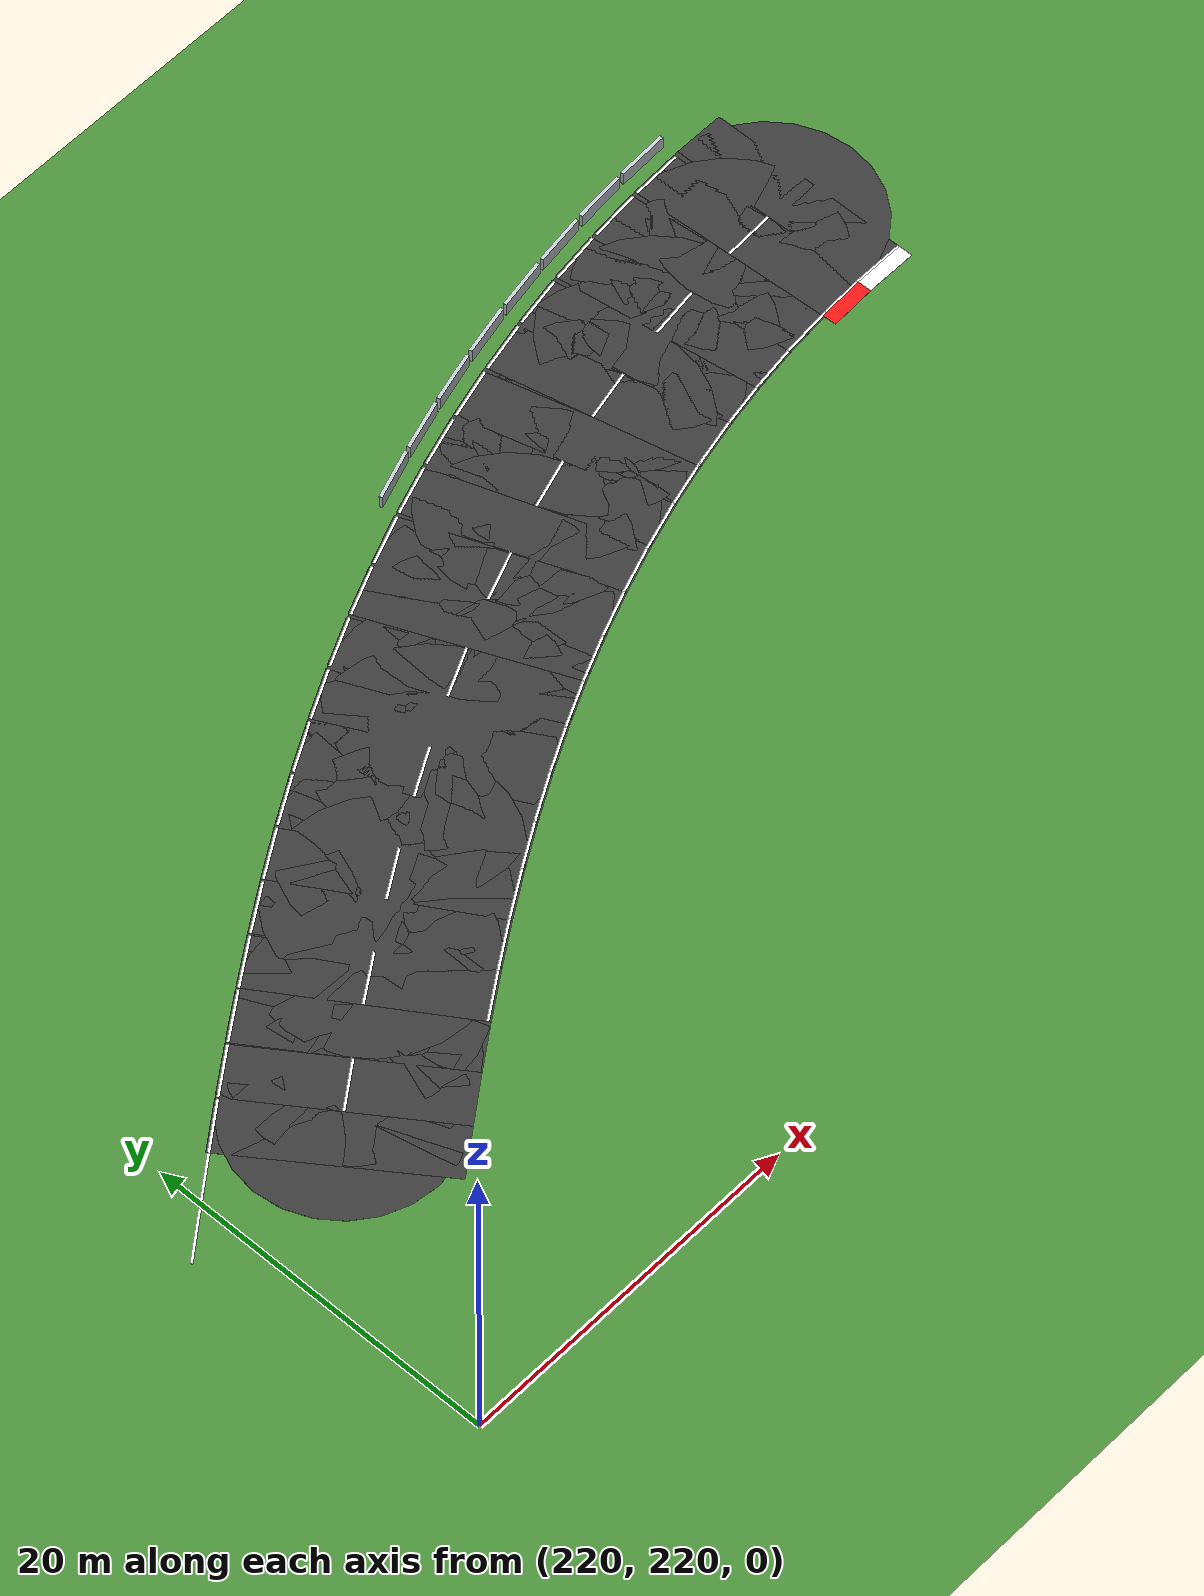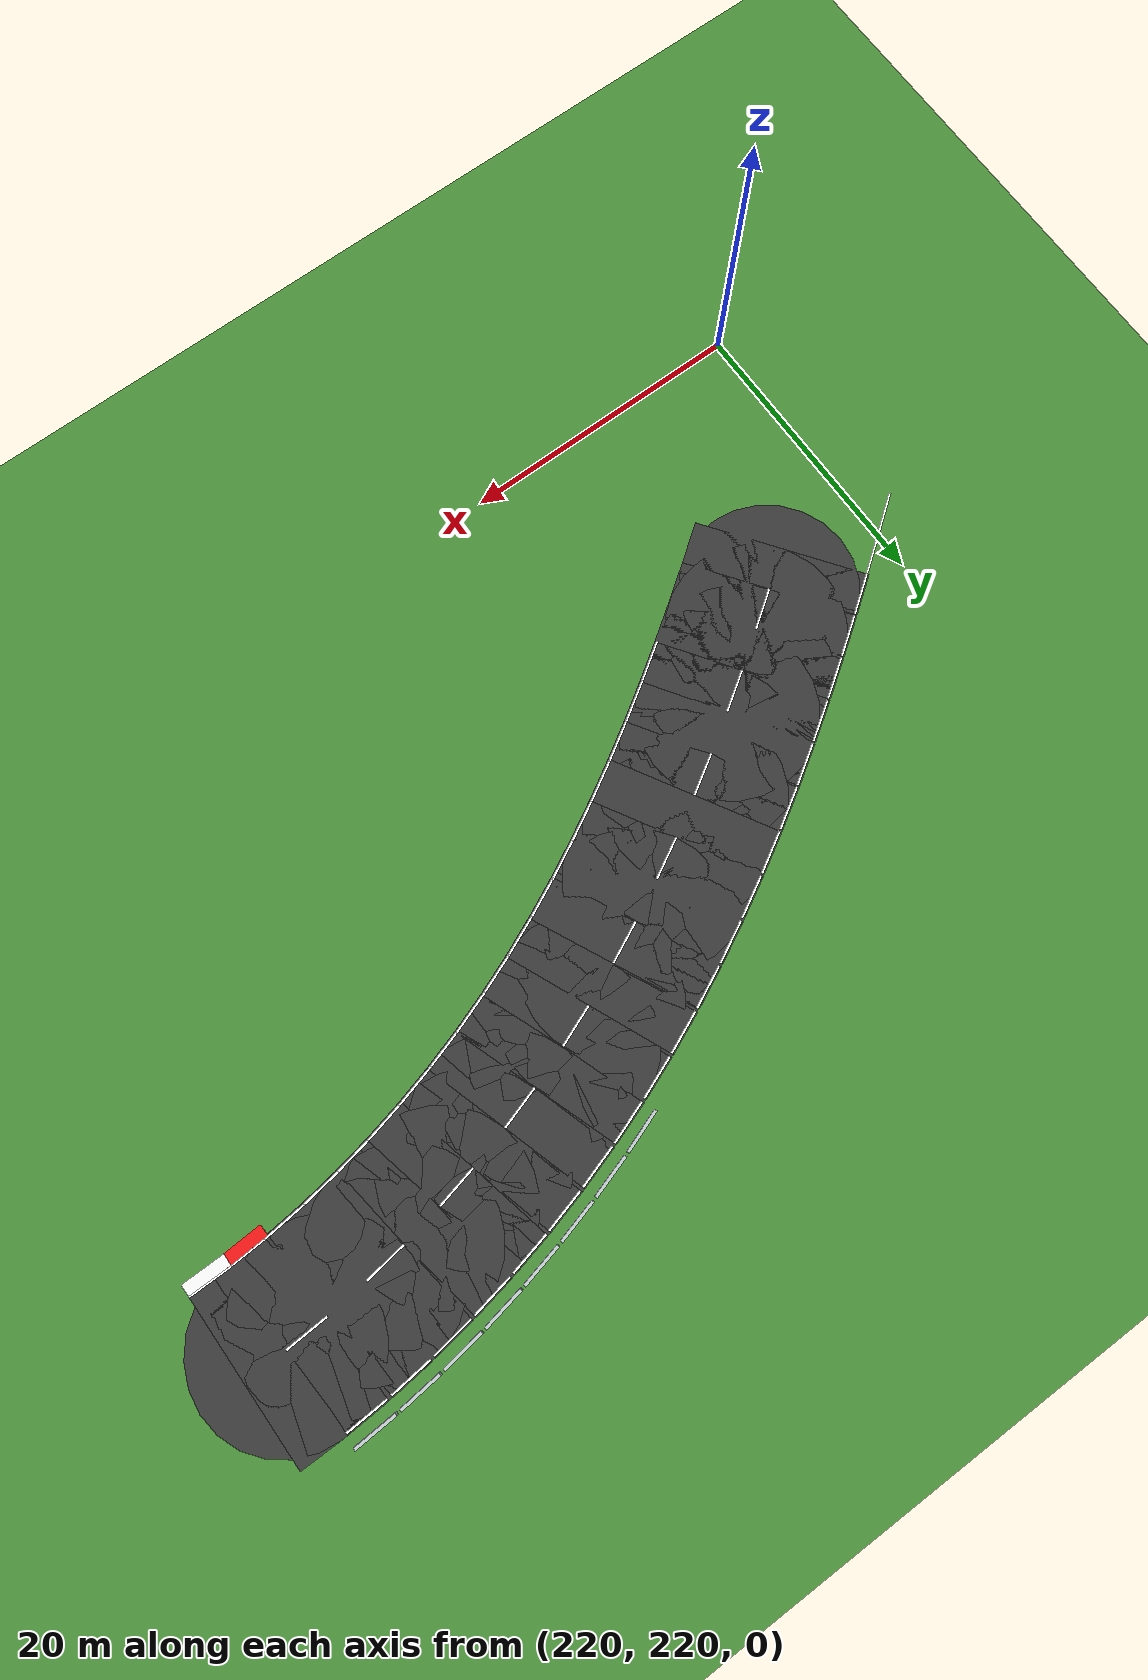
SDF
<sdf version="1.6">
 <world name="sem_silesia_ring_2026">
  <model name="ground_plane">
   <static>true</static>
   <link name="link">
    <collision name="collision">
     <geometry><plane><normal>0 0 1</normal><size>1200 1200</size></plane></geometry>
     <surface><friction><ode><mu>0.6</mu><mu2>0.6</mu2></ode></friction></surface>
    </collision>
    <visual name="visual">
     <geometry><plane><normal>0 0 1</normal><size>1200 1200</size></plane></geometry>
     <material><ambient>0.28 0.55 0.22 1</ambient><diffuse>0.28 0.55 0.22 1</diffuse></material>
    </visual>
   </link>
  </model>
  <model name="road_s213">
   <static>true</static>
   <pose>281.7502 257.1115 0.0030 0 0 3.1406</pose>
   <link name="link">
    <visual name="v">
     <geometry><box><size>3.0022 12.0000 0.0060</size></box></geometry>
     <material><ambient>0.22 0.22 0.22 1</ambient><diffuse>0.22 0.22 0.22 1</diffuse></material>
    </visual>
    <collision name="c">
     <geometry><box><size>3.0022 12.0000 0.0060</size></box></geometry>
     <surface><friction><ode><mu>0.9</mu><mu2>0.9</mu2></ode></friction></surface>
    </collision>
   </link>
  </model>
  <model name="wl_L_s213">
   <static>true</static>
   <pose>281.7446 251.2615 0.0070 0 0 3.1406</pose>
   <link name="link">
    <visual name="v">
     <geometry><box><size>3.0022 0.1500 0.0080</size></box></geometry>
     <material><ambient>0.95 0.95 0.95 1</ambient><diffuse>0.95 0.95 0.95 1</diffuse></material>
    </visual>
   </link>
  </model>
  <model name="kerb_L_213">
   <static>true</static>
   <pose>281.7442 250.8115 0.0120 0 0 3.1406</pose>
   <link name="link">
    <visual name="v">
     <geometry><box><size>3.0022 0.8000 0.0160</size></box></geometry>
     <material><ambient>0.95 0.95 0.95 1</ambient><diffuse>0.95 0.95 0.95 1</diffuse></material>
    </visual>
   </link>
  </model>
  <model name="road_s214">
   <static>true</static>
   <pose>278.7496 257.0422 0.0030 0 0 -3.0945</pose>
   <link name="link">
    <visual name="v">
     <geometry><box><size>3.0023 12.0000 0.0060</size></box></geometry>
     <material><ambient>0.22 0.22 0.22 1</ambient><diffuse>0.22 0.22 0.22 1</diffuse></material>
    </visual>
    <collision name="c">
     <geometry><box><size>3.0023 12.0000 0.0060</size></box></geometry>
     <surface><friction><ode><mu>0.9</mu><mu2>0.9</mu2></ode></friction></surface>
    </collision>
   </link>
  </model>
  <model name="road_jnt214">
   <static>true</static>
   <pose>280.2491 257.1129 0.0030 0 0 0</pose>
   <link name="link">
    <visual name="v">
     <geometry><cylinder><radius>6.0000</radius><length>0.0060</length></cylinder></geometry>
     <material><ambient>0.22 0.22 0.22 1</ambient><diffuse>0.22 0.22 0.22 1</diffuse></material>
    </visual>
    <collision name="c">
     <geometry><cylinder><radius>6.0000</radius><length>0.0060</length></cylinder></geometry>
     <surface><friction><ode><mu>0.9</mu><mu2>0.9</mu2></ode></friction></surface>
    </collision>
   </link>
  </model>
  <model name="wl_L_s214">
   <static>true</static>
   <pose>279.0252 251.1987 0.0070 0 0 -3.0945</pose>
   <link name="link">
    <visual name="v">
     <geometry><box><size>3.0023 0.1500 0.0080</size></box></geometry>
     <material><ambient>0.95 0.95 0.95 1</ambient><diffuse>0.95 0.95 0.95 1</diffuse></material>
    </visual>
   </link>
  </model>
  <model name="wl_R_s214">
   <static>true</static>
   <pose>278.4740 262.8857 0.0070 0 0 -3.0945</pose>
   <link name="link">
    <visual name="v">
     <geometry><box><size>3.0023 0.1500 0.0080</size></box></geometry>
     <material><ambient>0.95 0.95 0.95 1</ambient><diffuse>0.95 0.95 0.95 1</diffuse></material>
    </visual>
   </link>
  </model>
  <model name="cd_s214">
   <static>true</static>
   <pose>278.7496 257.0422 0.0070 0 0 -3.0945</pose>
   <link name="link">
    <visual name="v">
     <geometry><box><size>3.0023 0.1500 0.0080</size></box></geometry>
     <material><ambient>0.95 0.95 0.95 1</ambient><diffuse>0.95 0.95 0.95 1</diffuse></material>
    </visual>
   </link>
  </model>
  <model name="kerb_L_214">
   <static>true</static>
   <pose>279.0464 250.7492 0.0120 0 0 -3.0945</pose>
   <link name="link">
    <visual name="v">
     <geometry><box><size>3.0023 0.8000 0.0160</size></box></geometry>
     <material><ambient>0.92 0.08 0.08 1</ambient><diffuse>0.92 0.08 0.08 1</diffuse></material>
    </visual>
   </link>
  </model>
  <model name="arm_outR_214">
   <static>true</static>
   <pose>278.4292 263.8346 0.4000 0 0 -3.0945</pose>
   <link name="link">
    <visual name="v">
     <geometry><box><size>3.0023 0.2000 0.8000</size></box></geometry>
     <material><ambient>0.75 0.77 0.80 1</ambient><diffuse>0.75 0.77 0.80 1</diffuse></material>
    </visual>
    <collision name="c">
     <geometry><box><size>3.0023 0.2000 0.8000</size></box></geometry>
     <surface><friction><ode><mu>0.8</mu><mu2>0.8</mu2></ode></friction></surface>
    </collision>
   </link>
  </model>
  <model name="road_s215">
   <static>true</static>
   <pose>275.7556 256.8313 0.0030 0 0 -3.0481</pose>
   <link name="link">
    <visual name="v">
     <geometry><box><size>3.0023 12.0000 0.0060</size></box></geometry>
     <material><ambient>0.22 0.22 0.22 1</ambient><diffuse>0.22 0.22 0.22 1</diffuse></material>
    </visual>
    <collision name="c">
     <geometry><box><size>3.0023 12.0000 0.0060</size></box></geometry>
     <surface><friction><ode><mu>0.9</mu><mu2>0.9</mu2></ode></friction></surface>
    </collision>
   </link>
  </model>
  <model name="road_jnt215">
   <static>true</static>
   <pose>277.2501 256.9714 0.0030 0 0 0</pose>
   <link name="link">
    <visual name="v">
     <geometry><cylinder><radius>6.0000</radius><length>0.0060</length></cylinder></geometry>
     <material><ambient>0.22 0.22 0.22 1</ambient><diffuse>0.22 0.22 0.22 1</diffuse></material>
    </visual>
    <collision name="c">
     <geometry><cylinder><radius>6.0000</radius><length>0.0060</length></cylinder></geometry>
     <surface><friction><ode><mu>0.9</mu><mu2>0.9</mu2></ode></friction></surface>
    </collision>
   </link>
  </model>
  <model name="wl_L_s215">
   <static>true</static>
   <pose>276.3017 251.0069 0.0070 0 0 -3.0481</pose>
   <link name="link">
    <visual name="v">
     <geometry><box><size>3.0023 0.1500 0.0080</size></box></geometry>
     <material><ambient>0.95 0.95 0.95 1</ambient><diffuse>0.95 0.95 0.95 1</diffuse></material>
    </visual>
   </link>
  </model>
  <model name="wl_R_s215">
   <static>true</static>
   <pose>275.2094 262.6557 0.0070 0 0 -3.0481</pose>
   <link name="link">
    <visual name="v">
     <geometry><box><size>3.0023 0.1500 0.0080</size></box></geometry>
     <material><ambient>0.95 0.95 0.95 1</ambient><diffuse>0.95 0.95 0.95 1</diffuse></material>
    </visual>
   </link>
  </model>
  <model name="arm_outR_215">
   <static>true</static>
   <pose>275.1207 263.6016 0.4000 0 0 -3.0481</pose>
   <link name="link">
    <visual name="v">
     <geometry><box><size>3.0023 0.2000 0.8000</size></box></geometry>
     <material><ambient>0.75 0.77 0.80 1</ambient><diffuse>0.75 0.77 0.80 1</diffuse></material>
    </visual>
    <collision name="c">
     <geometry><box><size>3.0023 0.2000 0.8000</size></box></geometry>
     <surface><friction><ode><mu>0.8</mu><mu2>0.8</mu2></ode></friction></surface>
    </collision>
   </link>
  </model>
  <model name="road_s216">
   <static>true</static>
   <pose>272.7741 256.4844 0.0030 0 0 -3.0034</pose>
   <link name="link">
    <visual name="v">
     <geometry><box><size>3.0023 12.0000 0.0060</size></box></geometry>
     <material><ambient>0.22 0.22 0.22 1</ambient><diffuse>0.22 0.22 0.22 1</diffuse></material>
    </visual>
    <collision name="c">
     <geometry><box><size>3.0023 12.0000 0.0060</size></box></geometry>
     <surface><friction><ode><mu>0.9</mu><mu2>0.9</mu2></ode></friction></surface>
    </collision>
   </link>
  </model>
  <model name="road_jnt216">
   <static>true</static>
   <pose>274.2610 256.6912 0.0030 0 0 0</pose>
   <link name="link">
    <visual name="v">
     <geometry><cylinder><radius>6.0000</radius><length>0.0060</length></cylinder></geometry>
     <material><ambient>0.22 0.22 0.22 1</ambient><diffuse>0.22 0.22 0.22 1</diffuse></material>
    </visual>
    <collision name="c">
     <geometry><cylinder><radius>6.0000</radius><length>0.0060</length></cylinder></geometry>
     <surface><friction><ode><mu>0.9</mu><mu2>0.9</mu2></ode></friction></surface>
    </collision>
   </link>
  </model>
  <model name="wl_L_s216">
   <static>true</static>
   <pose>273.5799 250.6901 0.0070 0 0 -3.0034</pose>
   <link name="link">
    <visual name="v">
     <geometry><box><size>3.0023 0.1500 0.0080</size></box></geometry>
     <material><ambient>0.95 0.95 0.95 1</ambient><diffuse>0.95 0.95 0.95 1</diffuse></material>
    </visual>
   </link>
  </model>
  <model name="wl_R_s216">
   <static>true</static>
   <pose>271.9684 262.2786 0.0070 0 0 -3.0034</pose>
   <link name="link">
    <visual name="v">
     <geometry><box><size>3.0023 0.1500 0.0080</size></box></geometry>
     <material><ambient>0.95 0.95 0.95 1</ambient><diffuse>0.95 0.95 0.95 1</diffuse></material>
    </visual>
   </link>
  </model>
  <model name="cd_s216">
   <static>true</static>
   <pose>272.7741 256.4844 0.0070 0 0 -3.0034</pose>
   <link name="link">
    <visual name="v">
     <geometry><box><size>3.0023 0.1500 0.0080</size></box></geometry>
     <material><ambient>0.95 0.95 0.95 1</ambient><diffuse>0.95 0.95 0.95 1</diffuse></material>
    </visual>
   </link>
  </model>
  <model name="arm_outR_216">
   <static>true</static>
   <pose>271.8375 263.2196 0.4000 0 0 -3.0034</pose>
   <link name="link">
    <visual name="v">
     <geometry><box><size>3.0023 0.2000 0.8000</size></box></geometry>
     <material><ambient>0.75 0.77 0.80 1</ambient><diffuse>0.75 0.77 0.80 1</diffuse></material>
    </visual>
    <collision name="c">
     <geometry><box><size>3.0023 0.2000 0.8000</size></box></geometry>
     <surface><friction><ode><mu>0.8</mu><mu2>0.8</mu2></ode></friction></surface>
    </collision>
   </link>
  </model>
  <model name="road_s217">
   <static>true</static>
   <pose>269.8107 256.0071 0.0030 0 0 -2.9604</pose>
   <link name="link">
    <visual name="v">
     <geometry><box><size>3.0023 12.0000 0.0060</size></box></geometry>
     <material><ambient>0.22 0.22 0.22 1</ambient><diffuse>0.22 0.22 0.22 1</diffuse></material>
    </visual>
    <collision name="c">
     <geometry><box><size>3.0023 12.0000 0.0060</size></box></geometry>
     <surface><friction><ode><mu>0.9</mu><mu2>0.9</mu2></ode></friction></surface>
    </collision>
   </link>
  </model>
  <model name="road_jnt217">
   <static>true</static>
   <pose>271.2873 256.2776 0.0030 0 0 0</pose>
   <link name="link">
    <visual name="v">
     <geometry><cylinder><radius>6.0000</radius><length>0.0060</length></cylinder></geometry>
     <material><ambient>0.22 0.22 0.22 1</ambient><diffuse>0.22 0.22 0.22 1</diffuse></material>
    </visual>
    <collision name="c">
     <geometry><cylinder><radius>6.0000</radius><length>0.0060</length></cylinder></geometry>
     <surface><friction><ode><mu>0.9</mu><mu2>0.9</mu2></ode></friction></surface>
    </collision>
   </link>
  </model>
  <model name="wl_L_s217">
   <static>true</static>
   <pose>270.8651 250.2529 0.0070 0 0 -2.9604</pose>
   <link name="link">
    <visual name="v">
     <geometry><box><size>3.0023 0.1500 0.0080</size></box></geometry>
     <material><ambient>0.95 0.95 0.95 1</ambient><diffuse>0.95 0.95 0.95 1</diffuse></material>
    </visual>
   </link>
  </model>
  <model name="wl_R_s217">
   <static>true</static>
   <pose>268.7563 261.7613 0.0070 0 0 -2.9604</pose>
   <link name="link">
    <visual name="v">
     <geometry><box><size>3.0023 0.1500 0.0080</size></box></geometry>
     <material><ambient>0.95 0.95 0.95 1</ambient><diffuse>0.95 0.95 0.95 1</diffuse></material>
    </visual>
   </link>
  </model>
  <model name="arm_outR_217">
   <static>true</static>
   <pose>268.5851 262.6957 0.4000 0 0 -2.9604</pose>
   <link name="link">
    <visual name="v">
     <geometry><box><size>3.0023 0.2000 0.8000</size></box></geometry>
     <material><ambient>0.75 0.77 0.80 1</ambient><diffuse>0.75 0.77 0.80 1</diffuse></material>
    </visual>
    <collision name="c">
     <geometry><box><size>3.0023 0.2000 0.8000</size></box></geometry>
     <surface><friction><ode><mu>0.8</mu><mu2>0.8</mu2></ode></friction></surface>
    </collision>
   </link>
  </model>
  <model name="road_s218">
   <static>true</static>
   <pose>266.8701 255.4049 0.0030 0 0 -2.9189</pose>
   <link name="link">
    <visual name="v">
     <geometry><box><size>3.0023 12.0000 0.0060</size></box></geometry>
     <material><ambient>0.22 0.22 0.22 1</ambient><diffuse>0.22 0.22 0.22 1</diffuse></material>
    </visual>
    <collision name="c">
     <geometry><box><size>3.0023 12.0000 0.0060</size></box></geometry>
     <surface><friction><ode><mu>0.9</mu><mu2>0.9</mu2></ode></friction></surface>
    </collision>
   </link>
  </model>
  <model name="road_jnt218">
   <static>true</static>
   <pose>268.3342 255.7365 0.0030 0 0 0</pose>
   <link name="link">
    <visual name="v">
     <geometry><cylinder><radius>6.0000</radius><length>0.0060</length></cylinder></geometry>
     <material><ambient>0.22 0.22 0.22 1</ambient><diffuse>0.22 0.22 0.22 1</diffuse></material>
    </visual>
    <collision name="c">
     <geometry><cylinder><radius>6.0000</radius><length>0.0060</length></cylinder></geometry>
     <surface><friction><ode><mu>0.9</mu><mu2>0.9</mu2></ode></friction></surface>
    </collision>
   </link>
  </model>
  <model name="wl_L_s218">
   <static>true</static>
   <pose>268.1623 249.6994 0.0070 0 0 -2.9189</pose>
   <link name="link">
    <visual name="v">
     <geometry><box><size>3.0023 0.1500 0.0080</size></box></geometry>
     <material><ambient>0.95 0.95 0.95 1</ambient><diffuse>0.95 0.95 0.95 1</diffuse></material>
    </visual>
   </link>
  </model>
  <model name="wl_R_s218">
   <static>true</static>
   <pose>265.5778 261.1104 0.0070 0 0 -2.9189</pose>
   <link name="link">
    <visual name="v">
     <geometry><box><size>3.0023 0.1500 0.0080</size></box></geometry>
     <material><ambient>0.95 0.95 0.95 1</ambient><diffuse>0.95 0.95 0.95 1</diffuse></material>
    </visual>
   </link>
  </model>
  <model name="cd_s218">
   <static>true</static>
   <pose>266.8701 255.4049 0.0070 0 0 -2.9189</pose>
   <link name="link">
    <visual name="v">
     <geometry><box><size>3.0023 0.1500 0.0080</size></box></geometry>
     <material><ambient>0.95 0.95 0.95 1</ambient><diffuse>0.95 0.95 0.95 1</diffuse></material>
    </visual>
   </link>
  </model>
  <model name="arm_outR_218">
   <static>true</static>
   <pose>265.3679 262.0369 0.4000 0 0 -2.9189</pose>
   <link name="link">
    <visual name="v">
     <geometry><box><size>3.0023 0.2000 0.8000</size></box></geometry>
     <material><ambient>0.75 0.77 0.80 1</ambient><diffuse>0.75 0.77 0.80 1</diffuse></material>
    </visual>
    <collision name="c">
     <geometry><box><size>3.0023 0.2000 0.8000</size></box></geometry>
     <surface><friction><ode><mu>0.8</mu><mu2>0.8</mu2></ode></friction></surface>
    </collision>
   </link>
  </model>
  <model name="road_s219">
   <static>true</static>
   <pose>263.9564 254.6833 0.0030 0 0 -2.8788</pose>
   <link name="link">
    <visual name="v">
     <geometry><box><size>3.0023 12.0000 0.0060</size></box></geometry>
     <material><ambient>0.22 0.22 0.22 1</ambient><diffuse>0.22 0.22 0.22 1</diffuse></material>
    </visual>
    <collision name="c">
     <geometry><box><size>3.0023 12.0000 0.0060</size></box></geometry>
     <surface><friction><ode><mu>0.9</mu><mu2>0.9</mu2></ode></friction></surface>
    </collision>
   </link>
  </model>
  <model name="road_jnt219">
   <static>true</static>
   <pose>265.4060 255.0733 0.0030 0 0 0</pose>
   <link name="link">
    <visual name="v">
     <geometry><cylinder><radius>6.0000</radius><length>0.0060</length></cylinder></geometry>
     <material><ambient>0.22 0.22 0.22 1</ambient><diffuse>0.22 0.22 0.22 1</diffuse></material>
    </visual>
    <collision name="c">
     <geometry><cylinder><radius>6.0000</radius><length>0.0060</length></cylinder></geometry>
     <surface><friction><ode><mu>0.9</mu><mu2>0.9</mu2></ode></friction></surface>
    </collision>
   </link>
  </model>
  <model name="wl_L_s219">
   <static>true</static>
   <pose>265.4762 249.0341 0.0070 0 0 -2.8788</pose>
   <link name="link">
    <visual name="v">
     <geometry><box><size>3.0023 0.1500 0.0080</size></box></geometry>
     <material><ambient>0.95 0.95 0.95 1</ambient><diffuse>0.95 0.95 0.95 1</diffuse></material>
    </visual>
   </link>
  </model>
  <model name="wl_R_s219">
   <static>true</static>
   <pose>262.4365 260.3324 0.0070 0 0 -2.8788</pose>
   <link name="link">
    <visual name="v">
     <geometry><box><size>3.0023 0.1500 0.0080</size></box></geometry>
     <material><ambient>0.95 0.95 0.95 1</ambient><diffuse>0.95 0.95 0.95 1</diffuse></material>
    </visual>
   </link>
  </model>
  <model name="arm_outR_219">
   <static>true</static>
   <pose>262.1897 261.2498 0.4000 0 0 -2.8788</pose>
   <link name="link">
    <visual name="v">
     <geometry><box><size>3.0023 0.2000 0.8000</size></box></geometry>
     <material><ambient>0.75 0.77 0.80 1</ambient><diffuse>0.75 0.77 0.80 1</diffuse></material>
    </visual>
    <collision name="c">
     <geometry><box><size>3.0023 0.2000 0.8000</size></box></geometry>
     <surface><friction><ode><mu>0.8</mu><mu2>0.8</mu2></ode></friction></surface>
    </collision>
   </link>
  </model>
  <model name="road_s220">
   <static>true</static>
   <pose>261.0733 253.8473 0.0030 0 0 -2.8400</pose>
   <link name="link">
    <visual name="v">
     <geometry><box><size>3.0024 12.0000 0.0060</size></box></geometry>
     <material><ambient>0.22 0.22 0.22 1</ambient><diffuse>0.22 0.22 0.22 1</diffuse></material>
    </visual>
    <collision name="c">
     <geometry><box><size>3.0024 12.0000 0.0060</size></box></geometry>
     <surface><friction><ode><mu>0.9</mu><mu2>0.9</mu2></ode></friction></surface>
    </collision>
   </link>
  </model>
  <model name="road_jnt220">
   <static>true</static>
   <pose>262.5067 254.2932 0.0030 0 0 0</pose>
   <link name="link">
    <visual name="v">
     <geometry><cylinder><radius>6.0000</radius><length>0.0060</length></cylinder></geometry>
     <material><ambient>0.22 0.22 0.22 1</ambient><diffuse>0.22 0.22 0.22 1</diffuse></material>
    </visual>
    <collision name="c">
     <geometry><cylinder><radius>6.0000</radius><length>0.0060</length></cylinder></geometry>
     <surface><friction><ode><mu>0.9</mu><mu2>0.9</mu2></ode></friction></surface>
    </collision>
   </link>
  </model>
  <model name="wl_L_s220">
   <static>true</static>
   <pose>262.8111 248.2614 0.0070 0 0 -2.8400</pose>
   <link name="link">
    <visual name="v">
     <geometry><box><size>3.0024 0.1500 0.0080</size></box></geometry>
     <material><ambient>0.95 0.95 0.95 1</ambient><diffuse>0.95 0.95 0.95 1</diffuse></material>
    </visual>
   </link>
  </model>
  <model name="wl_R_s220">
   <static>true</static>
   <pose>259.3356 259.4333 0.0070 0 0 -2.8400</pose>
   <link name="link">
    <visual name="v">
     <geometry><box><size>3.0024 0.1500 0.0080</size></box></geometry>
     <material><ambient>0.95 0.95 0.95 1</ambient><diffuse>0.95 0.95 0.95 1</diffuse></material>
    </visual>
   </link>
  </model>
  <model name="cd_s220">
   <static>true</static>
   <pose>261.0733 253.8473 0.0070 0 0 -2.8400</pose>
   <link name="link">
    <visual name="v">
     <geometry><box><size>3.0024 0.1500 0.0080</size></box></geometry>
     <material><ambient>0.95 0.95 0.95 1</ambient><diffuse>0.95 0.95 0.95 1</diffuse></material>
    </visual>
   </link>
  </model>
  <model name="arm_outR_220">
   <static>true</static>
   <pose>259.0534 260.3404 0.4000 0 0 -2.8400</pose>
   <link name="link">
    <visual name="v">
     <geometry><box><size>3.0024 0.2000 0.8000</size></box></geometry>
     <material><ambient>0.75 0.77 0.80 1</ambient><diffuse>0.75 0.77 0.80 1</diffuse></material>
    </visual>
    <collision name="c">
     <geometry><box><size>3.0024 0.2000 0.8000</size></box></geometry>
     <surface><friction><ode><mu>0.8</mu><mu2>0.8</mu2></ode></friction></surface>
    </collision>
   </link>
  </model>
  <model name="road_s221">
   <static>true</static>
   <pose>258.2243 252.9019 0.0030 0 0 -2.8024</pose>
   <link name="link">
    <visual name="v">
     <geometry><box><size>3.0024 12.0000 0.0060</size></box></geometry>
     <material><ambient>0.22 0.22 0.22 1</ambient><diffuse>0.22 0.22 0.22 1</diffuse></material>
    </visual>
    <collision name="c">
     <geometry><box><size>3.0024 12.0000 0.0060</size></box></geometry>
     <surface><friction><ode><mu>0.9</mu><mu2>0.9</mu2></ode></friction></surface>
    </collision>
   </link>
  </model>
  <model name="road_jnt221">
   <static>true</static>
   <pose>259.6399 253.4014 0.0030 0 0 0</pose>
   <link name="link">
    <visual name="v">
     <geometry><cylinder><radius>6.0000</radius><length>0.0060</length></cylinder></geometry>
     <material><ambient>0.22 0.22 0.22 1</ambient><diffuse>0.22 0.22 0.22 1</diffuse></material>
    </visual>
    <collision name="c">
     <geometry><cylinder><radius>6.0000</radius><length>0.0060</length></cylinder></geometry>
     <surface><friction><ode><mu>0.9</mu><mu2>0.9</mu2></ode></friction></surface>
    </collision>
   </link>
  </model>
  <model name="wl_L_s221">
   <static>true</static>
   <pose>260.1709 247.3852 0.0070 0 0 -2.8024</pose>
   <link name="link">
    <visual name="v">
     <geometry><box><size>3.0024 0.1500 0.0080</size></box></geometry>
     <material><ambient>0.95 0.95 0.95 1</ambient><diffuse>0.95 0.95 0.95 1</diffuse></material>
    </visual>
   </link>
  </model>
  <model name="wl_R_s221">
   <static>true</static>
   <pose>256.2777 258.4185 0.0070 0 0 -2.8024</pose>
   <link name="link">
    <visual name="v">
     <geometry><box><size>3.0024 0.1500 0.0080</size></box></geometry>
     <material><ambient>0.95 0.95 0.95 1</ambient><diffuse>0.95 0.95 0.95 1</diffuse></material>
    </visual>
   </link>
  </model>
  <model name="arm_outR_221">
   <static>true</static>
   <pose>255.9616 259.3144 0.4000 0 0 -2.8024</pose>
   <link name="link">
    <visual name="v">
     <geometry><box><size>3.0024 0.2000 0.8000</size></box></geometry>
     <material><ambient>0.75 0.77 0.80 1</ambient><diffuse>0.75 0.77 0.80 1</diffuse></material>
    </visual>
    <collision name="c">
     <geometry><box><size>3.0024 0.2000 0.8000</size></box></geometry>
     <surface><friction><ode><mu>0.8</mu><mu2>0.8</mu2></ode></friction></surface>
    </collision>
   </link>
  </model>
  <model name="road_s222">
   <static>true</static>
   <pose>255.4122 251.8514 0.0030 0 0 -2.7658</pose>
   <link name="link">
    <visual name="v">
     <geometry><box><size>3.0024 12.0000 0.0060</size></box></geometry>
     <material><ambient>0.22 0.22 0.22 1</ambient><diffuse>0.22 0.22 0.22 1</diffuse></material>
    </visual>
    <collision name="c">
     <geometry><box><size>3.0024 12.0000 0.0060</size></box></geometry>
     <surface><friction><ode><mu>0.9</mu><mu2>0.9</mu2></ode></friction></surface>
    </collision>
   </link>
  </model>
  <model name="road_jnt222">
   <static>true</static>
   <pose>256.8086 252.4024 0.0030 0 0 0</pose>
   <link name="link">
    <visual name="v">
     <geometry><cylinder><radius>6.0000</radius><length>0.0060</length></cylinder></geometry>
     <material><ambient>0.22 0.22 0.22 1</ambient><diffuse>0.22 0.22 0.22 1</diffuse></material>
    </visual>
    <collision name="c">
     <geometry><cylinder><radius>6.0000</radius><length>0.0060</length></cylinder></geometry>
     <surface><friction><ode><mu>0.9</mu><mu2>0.9</mu2></ode></friction></surface>
    </collision>
   </link>
  </model>
  <model name="wl_L_s222">
   <static>true</static>
   <pose>257.5593 246.4097 0.0070 0 0 -2.7658</pose>
   <link name="link">
    <visual name="v">
     <geometry><box><size>3.0024 0.1500 0.0080</size></box></geometry>
     <material><ambient>0.95 0.95 0.95 1</ambient><diffuse>0.95 0.95 0.95 1</diffuse></material>
    </visual>
   </link>
  </model>
  <model name="wl_R_s222">
   <static>true</static>
   <pose>253.2651 257.2931 0.0070 0 0 -2.7658</pose>
   <link name="link">
    <visual name="v">
     <geometry><box><size>3.0024 0.1500 0.0080</size></box></geometry>
     <material><ambient>0.95 0.95 0.95 1</ambient><diffuse>0.95 0.95 0.95 1</diffuse></material>
    </visual>
   </link>
  </model>
  <model name="cd_s222">
   <static>true</static>
   <pose>255.4122 251.8514 0.0070 0 0 -2.7658</pose>
   <link name="link">
    <visual name="v">
     <geometry><box><size>3.0024 0.1500 0.0080</size></box></geometry>
     <material><ambient>0.95 0.95 0.95 1</ambient><diffuse>0.95 0.95 0.95 1</diffuse></material>
    </visual>
   </link>
  </model>
  <model name="road_s223">
   <static>true</static>
   <pose>252.6396 250.7008 0.0030 0 0 -2.7307</pose>
   <link name="link">
    <visual name="v">
     <geometry><box><size>3.0024 12.0000 0.0060</size></box></geometry>
     <material><ambient>0.22 0.22 0.22 1</ambient><diffuse>0.22 0.22 0.22 1</diffuse></material>
    </visual>
    <collision name="c">
     <geometry><box><size>3.0024 12.0000 0.0060</size></box></geometry>
     <surface><friction><ode><mu>0.9</mu><mu2>0.9</mu2></ode></friction></surface>
    </collision>
   </link>
  </model>
  <model name="road_jnt223">
   <static>true</static>
   <pose>254.0158 251.3004 0.0030 0 0 0</pose>
   <link name="link">
    <visual name="v">
     <geometry><cylinder><radius>6.0000</radius><length>0.0060</length></cylinder></geometry>
     <material><ambient>0.22 0.22 0.22 1</ambient><diffuse>0.22 0.22 0.22 1</diffuse></material>
    </visual>
    <collision name="c">
     <geometry><cylinder><radius>6.0000</radius><length>0.0060</length></cylinder></geometry>
     <surface><friction><ode><mu>0.9</mu><mu2>0.9</mu2></ode></friction></surface>
    </collision>
   </link>
  </model>
  <model name="wl_L_s223">
   <static>true</static>
   <pose>254.9763 245.3377 0.0070 0 0 -2.7307</pose>
   <link name="link">
    <visual name="v">
     <geometry><box><size>3.0024 0.1500 0.0080</size></box></geometry>
     <material><ambient>0.95 0.95 0.95 1</ambient><diffuse>0.95 0.95 0.95 1</diffuse></material>
    </visual>
   </link>
  </model>
  <model name="wl_R_s223">
   <static>true</static>
   <pose>250.3028 256.0638 0.0070 0 0 -2.7307</pose>
   <link name="link">
    <visual name="v">
     <geometry><box><size>3.0024 0.1500 0.0080</size></box></geometry>
     <material><ambient>0.95 0.95 0.95 1</ambient><diffuse>0.95 0.95 0.95 1</diffuse></material>
    </visual>
   </link>
  </model>
  <model name="road_s224">
   <static>true</static>
   <pose>249.9075 249.4567 0.0030 0 0 -2.6979</pose>
   <link name="link">
    <visual name="v">
     <geometry><box><size>3.0024 12.0000 0.0060</size></box></geometry>
     <material><ambient>0.22 0.22 0.22 1</ambient><diffuse>0.22 0.22 0.22 1</diffuse></material>
    </visual>
    <collision name="c">
     <geometry><box><size>3.0024 12.0000 0.0060</size></box></geometry>
     <surface><friction><ode><mu>0.9</mu><mu2>0.9</mu2></ode></friction></surface>
    </collision>
   </link>
  </model>
  <model name="road_jnt224">
   <static>true</static>
   <pose>251.2633 250.1011 0.0030 0 0 0</pose>
   <link name="link">
    <visual name="v">
     <geometry><cylinder><radius>6.0000</radius><length>0.0060</length></cylinder></geometry>
     <material><ambient>0.22 0.22 0.22 1</ambient><diffuse>0.22 0.22 0.22 1</diffuse></material>
    </visual>
    <collision name="c">
     <geometry><cylinder><radius>6.0000</radius><length>0.0060</length></cylinder></geometry>
     <surface><friction><ode><mu>0.9</mu><mu2>0.9</mu2></ode></friction></surface>
    </collision>
   </link>
  </model>
  <model name="wl_L_s224">
   <static>true</static>
   <pose>252.4189 244.1732 0.0070 0 0 -2.6979</pose>
   <link name="link">
    <visual name="v">
     <geometry><box><size>3.0024 0.1500 0.0080</size></box></geometry>
     <material><ambient>0.95 0.95 0.95 1</ambient><diffuse>0.95 0.95 0.95 1</diffuse></material>
    </visual>
   </link>
  </model>
  <model name="wl_R_s224">
   <static>true</static>
   <pose>247.3961 254.7402 0.0070 0 0 -2.6979</pose>
   <link name="link">
    <visual name="v">
     <geometry><box><size>3.0024 0.1500 0.0080</size></box></geometry>
     <material><ambient>0.95 0.95 0.95 1</ambient><diffuse>0.95 0.95 0.95 1</diffuse></material>
    </visual>
   </link>
  </model>
  <model name="cd_s224">
   <static>true</static>
   <pose>249.9075 249.4567 0.0070 0 0 -2.6979</pose>
   <link name="link">
    <visual name="v">
     <geometry><box><size>3.0024 0.1500 0.0080</size></box></geometry>
     <material><ambient>0.95 0.95 0.95 1</ambient><diffuse>0.95 0.95 0.95 1</diffuse></material>
    </visual>
   </link>
  </model>
  <model name="road_s225">
   <static>true</static>
   <pose>247.2160 248.1268 0.0030 0 0 -2.6675</pose>
   <link name="link">
    <visual name="v">
     <geometry><box><size>3.0024 12.0000 0.0060</size></box></geometry>
     <material><ambient>0.22 0.22 0.22 1</ambient><diffuse>0.22 0.22 0.22 1</diffuse></material>
    </visual>
    <collision name="c">
     <geometry><box><size>3.0024 12.0000 0.0060</size></box></geometry>
     <surface><friction><ode><mu>0.9</mu><mu2>0.9</mu2></ode></friction></surface>
    </collision>
   </link>
  </model>
  <model name="road_jnt225">
   <static>true</static>
   <pose>248.5517 248.8122 0.0030 0 0 0</pose>
   <link name="link">
    <visual name="v">
     <geometry><cylinder><radius>6.0000</radius><length>0.0060</length></cylinder></geometry>
     <material><ambient>0.22 0.22 0.22 1</ambient><diffuse>0.22 0.22 0.22 1</diffuse></material>
    </visual>
    <collision name="c">
     <geometry><cylinder><radius>6.0000</radius><length>0.0060</length></cylinder></geometry>
     <surface><friction><ode><mu>0.9</mu><mu2>0.9</mu2></ode></friction></surface>
    </collision>
   </link>
  </model>
  <model name="wl_L_s225">
   <static>true</static>
   <pose>249.8868 242.9221 0.0070 0 0 -2.6675</pose>
   <link name="link">
    <visual name="v">
     <geometry><box><size>3.0024 0.1500 0.0080</size></box></geometry>
     <material><ambient>0.95 0.95 0.95 1</ambient><diffuse>0.95 0.95 0.95 1</diffuse></material>
    </visual>
   </link>
  </model>
  <model name="wl_R_s225">
   <static>true</static>
   <pose>244.5452 253.3316 0.0070 0 0 -2.6675</pose>
   <link name="link">
    <visual name="v">
     <geometry><box><size>3.0024 0.1500 0.0080</size></box></geometry>
     <material><ambient>0.95 0.95 0.95 1</ambient><diffuse>0.95 0.95 0.95 1</diffuse></material>
    </visual>
   </link>
  </model>
  <model name="road_s226">
   <static>true</static>
   <pose>244.5644 246.7191 0.0030 0 0 -2.6396</pose>
   <link name="link">
    <visual name="v">
     <geometry><box><size>3.0024 12.0000 0.0060</size></box></geometry>
     <material><ambient>0.22 0.22 0.22 1</ambient><diffuse>0.22 0.22 0.22 1</diffuse></material>
    </visual>
    <collision name="c">
     <geometry><box><size>3.0024 12.0000 0.0060</size></box></geometry>
     <surface><friction><ode><mu>0.9</mu><mu2>0.9</mu2></ode></friction></surface>
    </collision>
   </link>
  </model>
  <model name="road_jnt226">
   <static>true</static>
   <pose>245.8804 247.4414 0.0030 0 0 0</pose>
   <link name="link">
    <visual name="v">
     <geometry><cylinder><radius>6.0000</radius><length>0.0060</length></cylinder></geometry>
     <material><ambient>0.22 0.22 0.22 1</ambient><diffuse>0.22 0.22 0.22 1</diffuse></material>
    </visual>
    <collision name="c">
     <geometry><cylinder><radius>6.0000</radius><length>0.0060</length></cylinder></geometry>
     <surface><friction><ode><mu>0.9</mu><mu2>0.9</mu2></ode></friction></surface>
    </collision>
   </link>
  </model>
  <model name="wl_L_s226">
   <static>true</static>
   <pose>247.3793 241.5908 0.0070 0 0 -2.6396</pose>
   <link name="link">
    <visual name="v">
     <geometry><box><size>3.0024 0.1500 0.0080</size></box></geometry>
     <material><ambient>0.95 0.95 0.95 1</ambient><diffuse>0.95 0.95 0.95 1</diffuse></material>
    </visual>
   </link>
  </model>
  <model name="wl_R_s226">
   <static>true</static>
   <pose>241.7495 251.8473 0.0070 0 0 -2.6396</pose>
   <link name="link">
    <visual name="v">
     <geometry><box><size>3.0024 0.1500 0.0080</size></box></geometry>
     <material><ambient>0.95 0.95 0.95 1</ambient><diffuse>0.95 0.95 0.95 1</diffuse></material>
    </visual>
   </link>
  </model>
  <model name="cd_s226">
   <static>true</static>
   <pose>244.5644 246.7191 0.0070 0 0 -2.6396</pose>
   <link name="link">
    <visual name="v">
     <geometry><box><size>3.0024 0.1500 0.0080</size></box></geometry>
     <material><ambient>0.95 0.95 0.95 1</ambient><diffuse>0.95 0.95 0.95 1</diffuse></material>
    </visual>
   </link>
  </model>
  <model name="road_s227">
   <static>true</static>
   <pose>241.9511 245.2413 0.0030 0 0 -2.6143</pose>
   <link name="link">
    <visual name="v">
     <geometry><box><size>3.0025 12.0000 0.0060</size></box></geometry>
     <material><ambient>0.22 0.22 0.22 1</ambient><diffuse>0.22 0.22 0.22 1</diffuse></material>
    </visual>
    <collision name="c">
     <geometry><box><size>3.0025 12.0000 0.0060</size></box></geometry>
     <surface><friction><ode><mu>0.9</mu><mu2>0.9</mu2></ode></friction></surface>
    </collision>
   </link>
  </model>
  <model name="road_jnt227">
   <static>true</static>
   <pose>243.2484 245.9967 0.0030 0 0 0</pose>
   <link name="link">
    <visual name="v">
     <geometry><cylinder><radius>6.0000</radius><length>0.0060</length></cylinder></geometry>
     <material><ambient>0.22 0.22 0.22 1</ambient><diffuse>0.22 0.22 0.22 1</diffuse></material>
    </visual>
    <collision name="c">
     <geometry><cylinder><radius>6.0000</radius><length>0.0060</length></cylinder></geometry>
     <surface><friction><ode><mu>0.9</mu><mu2>0.9</mu2></ode></friction></surface>
    </collision>
   </link>
  </model>
  <model name="wl_L_s227">
   <static>true</static>
   <pose>244.8950 240.1860 0.0070 0 0 -2.6143</pose>
   <link name="link">
    <visual name="v">
     <geometry><box><size>3.0025 0.1500 0.0080</size></box></geometry>
     <material><ambient>0.95 0.95 0.95 1</ambient><diffuse>0.95 0.95 0.95 1</diffuse></material>
    </visual>
   </link>
  </model>
  <model name="wl_R_s227">
   <static>true</static>
   <pose>239.0072 250.2965 0.0070 0 0 -2.6143</pose>
   <link name="link">
    <visual name="v">
     <geometry><box><size>3.0025 0.1500 0.0080</size></box></geometry>
     <material><ambient>0.95 0.95 0.95 1</ambient><diffuse>0.95 0.95 0.95 1</diffuse></material>
    </visual>
   </link>
  </model>
  <model name="road_s228">
   <static>true</static>
   <pose>239.3741 243.7009 0.0030 0 0 -2.5914</pose>
   <link name="link">
    <visual name="v">
     <geometry><box><size>3.0025 12.0000 0.0060</size></box></geometry>
     <material><ambient>0.22 0.22 0.22 1</ambient><diffuse>0.22 0.22 0.22 1</diffuse></material>
    </visual>
    <collision name="c">
     <geometry><box><size>3.0025 12.0000 0.0060</size></box></geometry>
     <surface><friction><ode><mu>0.9</mu><mu2>0.9</mu2></ode></friction></surface>
    </collision>
   </link>
  </model>
  <model name="road_jnt228">
   <static>true</static>
   <pose>240.6538 244.4858 0.0030 0 0 0</pose>
   <link name="link">
    <visual name="v">
     <geometry><cylinder><radius>6.0000</radius><length>0.0060</length></cylinder></geometry>
     <material><ambient>0.22 0.22 0.22 1</ambient><diffuse>0.22 0.22 0.22 1</diffuse></material>
    </visual>
    <collision name="c">
     <geometry><cylinder><radius>6.0000</radius><length>0.0060</length></cylinder></geometry>
     <surface><friction><ode><mu>0.9</mu><mu2>0.9</mu2></ode></friction></surface>
    </collision>
   </link>
  </model>
  <model name="wl_L_s228">
   <static>true</static>
   <pose>242.4325 238.7141 0.0070 0 0 -2.5914</pose>
   <link name="link">
    <visual name="v">
     <geometry><box><size>3.0025 0.1500 0.0080</size></box></geometry>
     <material><ambient>0.95 0.95 0.95 1</ambient><diffuse>0.95 0.95 0.95 1</diffuse></material>
    </visual>
   </link>
  </model>
  <model name="wl_R_s228">
   <static>true</static>
   <pose>236.3156 248.6877 0.0070 0 0 -2.5914</pose>
   <link name="link">
    <visual name="v">
     <geometry><box><size>3.0025 0.1500 0.0080</size></box></geometry>
     <material><ambient>0.95 0.95 0.95 1</ambient><diffuse>0.95 0.95 0.95 1</diffuse></material>
    </visual>
   </link>
  </model>
  <model name="cd_s228">
   <static>true</static>
   <pose>239.3741 243.7009 0.0070 0 0 -2.5914</pose>
   <link name="link">
    <visual name="v">
     <geometry><box><size>3.0025 0.1500 0.0080</size></box></geometry>
     <material><ambient>0.95 0.95 0.95 1</ambient><diffuse>0.95 0.95 0.95 1</diffuse></material>
    </visual>
   </link>
  </model>
  <model name="road_s229">
   <static>true</static>
   <pose>236.8308 242.1054 0.0030 0 0 -2.5712</pose>
   <link name="link">
    <visual name="v">
     <geometry><box><size>3.0025 12.0000 0.0060</size></box></geometry>
     <material><ambient>0.22 0.22 0.22 1</ambient><diffuse>0.22 0.22 0.22 1</diffuse></material>
    </visual>
    <collision name="c">
     <geometry><box><size>3.0025 12.0000 0.0060</size></box></geometry>
     <surface><friction><ode><mu>0.9</mu><mu2>0.9</mu2></ode></friction></surface>
    </collision>
   </link>
  </model>
  <model name="road_jnt229">
   <static>true</static>
   <pose>238.0944 242.9161 0.0030 0 0 0</pose>
   <link name="link">
    <visual name="v">
     <geometry><cylinder><radius>6.0000</radius><length>0.0060</length></cylinder></geometry>
     <material><ambient>0.22 0.22 0.22 1</ambient><diffuse>0.22 0.22 0.22 1</diffuse></material>
    </visual>
    <collision name="c">
     <geometry><cylinder><radius>6.0000</radius><length>0.0060</length></cylinder></geometry>
     <surface><friction><ode><mu>0.9</mu><mu2>0.9</mu2></ode></friction></surface>
    </collision>
   </link>
  </model>
  <model name="wl_L_s229">
   <static>true</static>
   <pose>239.9897 237.1816 0.0070 0 0 -2.5712</pose>
   <link name="link">
    <visual name="v">
     <geometry><box><size>3.0025 0.1500 0.0080</size></box></geometry>
     <material><ambient>0.95 0.95 0.95 1</ambient><diffuse>0.95 0.95 0.95 1</diffuse></material>
    </visual>
   </link>
  </model>
  <model name="wl_R_s229">
   <static>true</static>
   <pose>233.6719 247.0292 0.0070 0 0 -2.5712</pose>
   <link name="link">
    <visual name="v">
     <geometry><box><size>3.0025 0.1500 0.0080</size></box></geometry>
     <material><ambient>0.95 0.95 0.95 1</ambient><diffuse>0.95 0.95 0.95 1</diffuse></material>
    </visual>
   </link>
  </model>
  <model name="road_s230">
   <static>true</static>
   <pose>234.3182 240.4618 0.0030 0 0 -2.5534</pose>
   <link name="link">
    <visual name="v">
     <geometry><box><size>3.0025 12.0000 0.0060</size></box></geometry>
     <material><ambient>0.22 0.22 0.22 1</ambient><diffuse>0.22 0.22 0.22 1</diffuse></material>
    </visual>
    <collision name="c">
     <geometry><box><size>3.0025 12.0000 0.0060</size></box></geometry>
     <surface><friction><ode><mu>0.9</mu><mu2>0.9</mu2></ode></friction></surface>
    </collision>
   </link>
  </model>
  <model name="road_jnt230">
   <static>true</static>
   <pose>235.5672 241.2948 0.0030 0 0 0</pose>
   <link name="link">
    <visual name="v">
     <geometry><cylinder><radius>6.0000</radius><length>0.0060</length></cylinder></geometry>
     <material><ambient>0.22 0.22 0.22 1</ambient><diffuse>0.22 0.22 0.22 1</diffuse></material>
    </visual>
    <collision name="c">
     <geometry><cylinder><radius>6.0000</radius><length>0.0060</length></cylinder></geometry>
     <surface><friction><ode><mu>0.9</mu><mu2>0.9</mu2></ode></friction></surface>
    </collision>
   </link>
  </model>
  <model name="wl_L_s230">
   <static>true</static>
   <pose>237.5641 235.5949 0.0070 0 0 -2.5534</pose>
   <link name="link">
    <visual name="v">
     <geometry><box><size>3.0025 0.1500 0.0080</size></box></geometry>
     <material><ambient>0.95 0.95 0.95 1</ambient><diffuse>0.95 0.95 0.95 1</diffuse></material>
    </visual>
   </link>
  </model>
  <model name="wl_R_s230">
   <static>true</static>
   <pose>231.0724 245.3287 0.0070 0 0 -2.5534</pose>
   <link name="link">
    <visual name="v">
     <geometry><box><size>3.0025 0.1500 0.0080</size></box></geometry>
     <material><ambient>0.95 0.95 0.95 1</ambient><diffuse>0.95 0.95 0.95 1</diffuse></material>
    </visual>
   </link>
  </model>
  <model name="cd_s230">
   <static>true</static>
   <pose>234.3182 240.4618 0.0070 0 0 -2.5534</pose>
   <link name="link">
    <visual name="v">
     <geometry><box><size>3.0025 0.1500 0.0080</size></box></geometry>
     <material><ambient>0.95 0.95 0.95 1</ambient><diffuse>0.95 0.95 0.95 1</diffuse></material>
    </visual>
   </link>
  </model>
  <model name="road_s231">
   <static>true</static>
   <pose>231.8332 238.7769 0.0030 0 0 -2.5381</pose>
   <link name="link">
    <visual name="v">
     <geometry><box><size>3.0025 12.0000 0.0060</size></box></geometry>
     <material><ambient>0.22 0.22 0.22 1</ambient><diffuse>0.22 0.22 0.22 1</diffuse></material>
    </visual>
    <collision name="c">
     <geometry><box><size>3.0025 12.0000 0.0060</size></box></geometry>
     <surface><friction><ode><mu>0.9</mu><mu2>0.9</mu2></ode></friction></surface>
    </collision>
   </link>
  </model>
  <model name="road_jnt231">
   <static>true</static>
   <pose>233.0693 239.6288 0.0030 0 0 0</pose>
   <link name="link">
    <visual name="v">
     <geometry><cylinder><radius>6.0000</radius><length>0.0060</length></cylinder></geometry>
     <material><ambient>0.22 0.22 0.22 1</ambient><diffuse>0.22 0.22 0.22 1</diffuse></material>
    </visual>
    <collision name="c">
     <geometry><cylinder><radius>6.0000</radius><length>0.0060</length></cylinder></geometry>
     <surface><friction><ode><mu>0.9</mu><mu2>0.9</mu2></ode></friction></surface>
    </collision>
   </link>
  </model>
  <model name="wl_R_s231">
   <static>true</static>
   <pose>228.5133 243.5936 0.0070 0 0 -2.5381</pose>
   <link name="link">
    <visual name="v">
     <geometry><box><size>3.0025 0.1500 0.0080</size></box></geometry>
     <material><ambient>0.95 0.95 0.95 1</ambient><diffuse>0.95 0.95 0.95 1</diffuse></material>
    </visual>
   </link>
  </model>
  <model name="road_s232">
   <static>true</static>
   <pose>229.3721 237.0571 0.0030 0 0 -2.5253</pose>
   <link name="link">
    <visual name="v">
     <geometry><box><size>3.0025 12.0000 0.0060</size></box></geometry>
     <material><ambient>0.22 0.22 0.22 1</ambient><diffuse>0.22 0.22 0.22 1</diffuse></material>
    </visual>
    <collision name="c">
     <geometry><box><size>3.0025 12.0000 0.0060</size></box></geometry>
     <surface><friction><ode><mu>0.9</mu><mu2>0.9</mu2></ode></friction></surface>
    </collision>
   </link>
  </model>
  <model name="road_jnt232">
   <static>true</static>
   <pose>230.5971 237.9249 0.0030 0 0 0</pose>
   <link name="link">
    <visual name="v">
     <geometry><cylinder><radius>6.0000</radius><length>0.0060</length></cylinder></geometry>
     <material><ambient>0.22 0.22 0.22 1</ambient><diffuse>0.22 0.22 0.22 1</diffuse></material>
    </visual>
    <collision name="c">
     <geometry><cylinder><radius>6.0000</radius><length>0.0060</length></cylinder></geometry>
     <surface><friction><ode><mu>0.9</mu><mu2>0.9</mu2></ode></friction></surface>
    </collision>
   </link>
  </model>
  <model name="wl_R_s232">
   <static>true</static>
   <pose>225.9905 241.8308 0.0070 0 0 -2.5253</pose>
   <link name="link">
    <visual name="v">
     <geometry><box><size>3.0025 0.1500 0.0080</size></box></geometry>
     <material><ambient>0.95 0.95 0.95 1</ambient><diffuse>0.95 0.95 0.95 1</diffuse></material>
    </visual>
   </link>
  </model>
  <model name="cd_s232">
   <static>true</static>
   <pose>229.3721 237.0571 0.0070 0 0 -2.5253</pose>
   <link name="link">
    <visual name="v">
     <geometry><box><size>3.0025 0.1500 0.0080</size></box></geometry>
     <material><ambient>0.95 0.95 0.95 1</ambient><diffuse>0.95 0.95 0.95 1</diffuse></material>
    </visual>
   </link>
  </model>
  <model name="road_s233">
   <static>true</static>
   <pose>226.9311 235.3088 0.0030 0 0 -2.5148</pose>
   <link name="link">
    <visual name="v">
     <geometry><box><size>3.0025 12.0000 0.0060</size></box></geometry>
     <material><ambient>0.22 0.22 0.22 1</ambient><diffuse>0.22 0.22 0.22 1</diffuse></material>
    </visual>
    <collision name="c">
     <geometry><box><size>3.0025 12.0000 0.0060</size></box></geometry>
     <surface><friction><ode><mu>0.9</mu><mu2>0.9</mu2></ode></friction></surface>
    </collision>
   </link>
  </model>
  <model name="road_jnt233">
   <static>true</static>
   <pose>228.1470 236.1893 0.0030 0 0 0</pose>
   <link name="link">
    <visual name="v">
     <geometry><cylinder><radius>6.0000</radius><length>0.0060</length></cylinder></geometry>
     <material><ambient>0.22 0.22 0.22 1</ambient><diffuse>0.22 0.22 0.22 1</diffuse></material>
    </visual>
    <collision name="c">
     <geometry><cylinder><radius>6.0000</radius><length>0.0060</length></cylinder></geometry>
     <surface><friction><ode><mu>0.9</mu><mu2>0.9</mu2></ode></friction></surface>
    </collision>
   </link>
  </model>
  <model name="wl_R_s233">
   <static>true</static>
   <pose>223.4999 240.0468 0.0070 0 0 -2.5148</pose>
   <link name="link">
    <visual name="v">
     <geometry><box><size>3.0025 0.1500 0.0080</size></box></geometry>
     <material><ambient>0.95 0.95 0.95 1</ambient><diffuse>0.95 0.95 0.95 1</diffuse></material>
    </visual>
   </link>
  </model>
  <model name="wl_R_s234">
   <static>true</static>
   <pose>221.0371 238.2481 0.0070 0 0 -2.5067</pose>
   <link name="link">
    <visual name="v">
     <geometry><box><size>3.0025 0.1500 0.0080</size></box></geometry>
     <material><ambient>0.95 0.95 0.95 1</ambient><diffuse>0.95 0.95 0.95 1</diffuse></material>
    </visual>
   </link>
  </model>
  <model name="wl_R_s235">
   <static>true</static>
   <pose>218.5978 236.4407 0.0070 0 0 -2.5010</pose>
   <link name="link">
    <visual name="v">
     <geometry><box><size>3.0025 0.1500 0.0080</size></box></geometry>
     <material><ambient>0.95 0.95 0.95 1</ambient><diffuse>0.95 0.95 0.95 1</diffuse></material>
    </visual>
   </link>
  </model>
 </world>
</sdf>
